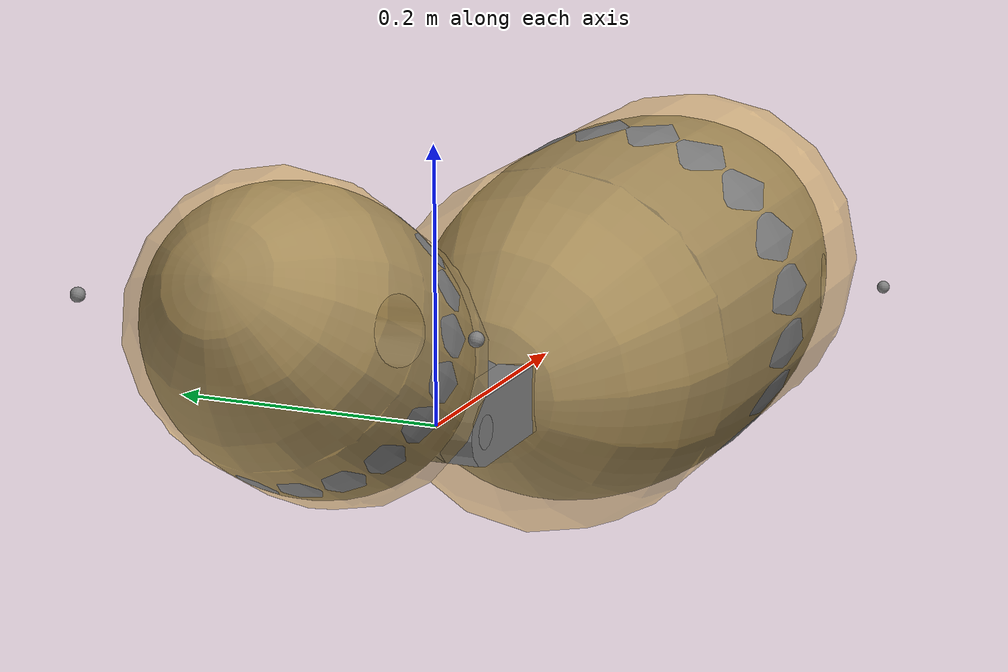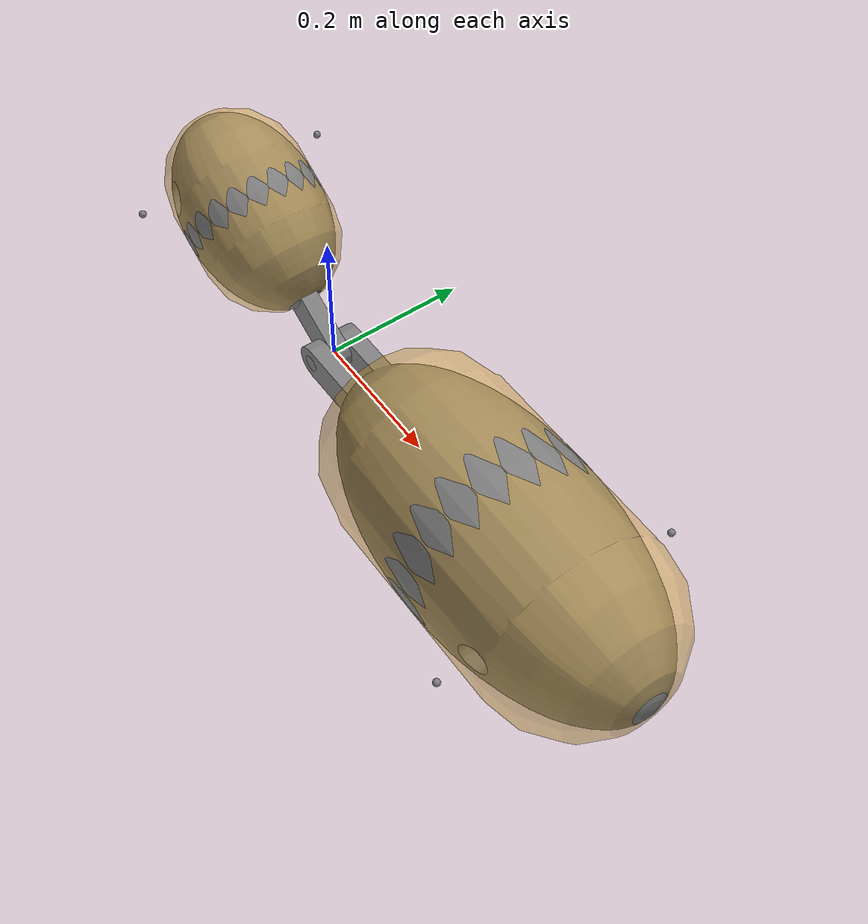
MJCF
<mujoco model="cheetah">
  <compiler angle="radian" meshdir="meshes/" inertiafromgeom="false"/>

  <default>
    <general forcerange="-18 18" biastype="affine" gainprm="50 0 0" biasprm="0 -50 -0.5"/>
    <joint damping="0.024" armature="0.011" range="-0.78 0.78"/>
  </default>

  <asset>
    <mesh name="base" file="base.STL"/>
    <mesh name="spine" file="spine.STL"/>
  </asset>

  <worldbody>
    <body name="base">
      <inertial pos="0.36059 -3.5411e-08 2.6263e-08" quat="0.500003 0.500003 0.499997 0.499997" mass="4" diaginertia="0.086585 0.086267 0.031067"/>
      <joint name="floating_base_joint" type="free" limited="false" actuatorfrclimited="false"/>
      <geom type="mesh" mesh="base"/>
      <geom type="capsule" size="0.14" fromto="0.215 0 0 0.515 0 0" group="0" contype="1" conaffinity="1" rgba="0.85 0.65 0.25 0.5"/>
      <site name="imu_frame" pos="0.485 0 0"/>
      <site name="fl_hip_mount" pos="0.485 0.1775 0"/>
      <site name="fr_hip_mount" pos="0.485 -0.1775 0"/>
      <body name="spine" quat="0.965926 0 0.25882 0">
        <inertial pos="-0.21386 2.4147e-07 -3.6136e-08" quat="0.500007 0.499998 0.5 0.499994" mass="2.818" diaginertia="0.019596 0.019319 0.0104"/>
        <joint name="spine_joint" pos="0 0 0" axis="0 1 0"/>
        <geom type="mesh" mesh="spine"/>
        <geom type="capsule" size="0.0975" fromto="-0.1725 0 0 -0.270 0 0" group="0" contype="1" conaffinity="1" rgba="0.85 0.65 0.25 0.5"/>
        <site name="bl_hip_mount" pos="-0.28023 0.1375 0" quat="0.999048 0 0.0436192 0"/>
        <site name="br_hip_mount" pos="-0.28023 -0.1375 0" quat="0.999048 0 0.0436192 0"/>
      </body>
    </body>
  </worldbody>

  <actuator>
    <general name="spine_act" joint="spine_joint"/>
  </actuator>

  <sensor>
    <gyro site="imu_frame" name="gyro"/>
    <velocimeter site="imu_frame" name="local_linvel"/>
    <accelerometer site="imu_frame" name="accelerometer"/>
    <framepos objtype="site" objname="imu_frame" name="global_position"/>
    <framezaxis objtype="site" objname="imu_frame" name="upvector"/>
    <framelinvel objtype="site" objname="imu_frame" name="global_linvel"/>
    <frameangvel objtype="site" objname="imu_frame" name="global_angvel"/>
    <framequat objtype="site" objname="imu_frame" name="orientation"/>
  </sensor>

</mujoco>
